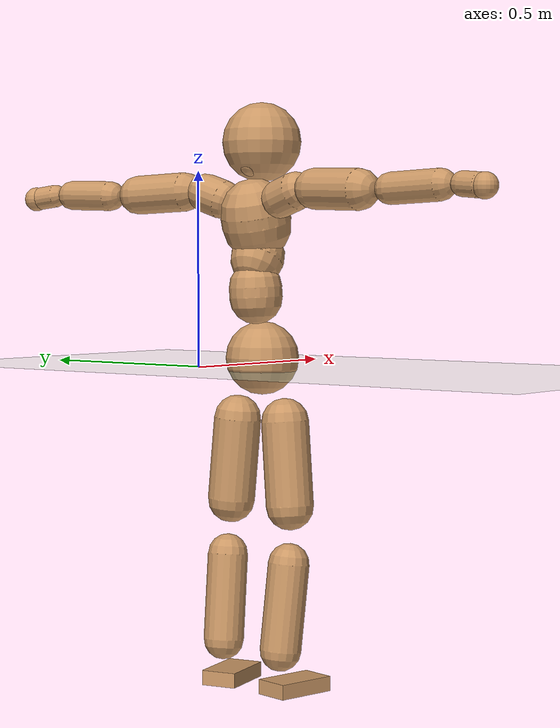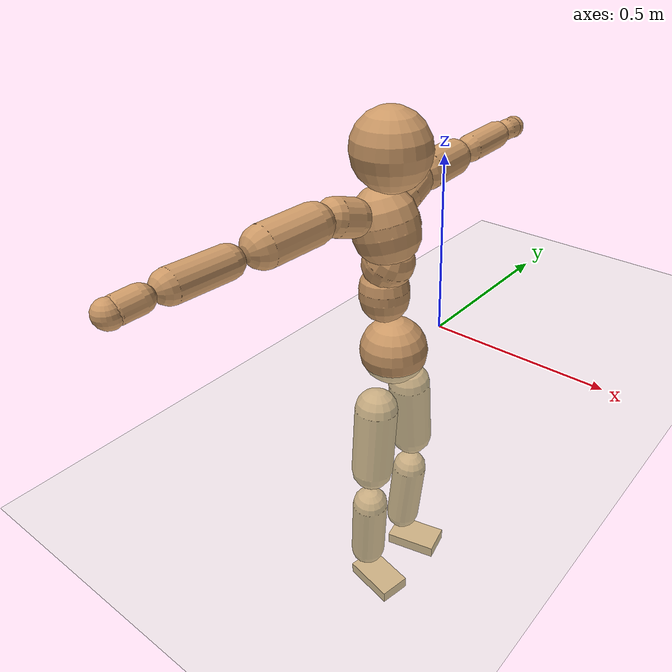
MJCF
<mujoco model="humanoid">
  <compiler coordinate="local"/>
  <default>
    <joint damping="0.0" armature="0.01" stiffness="0.0" limited="true"/>
    <geom conaffinity="1" condim="3" contype="7" margin="0.001" rgba="0.8 0.6 .4 1"/>
  </default>
  <asset>
    <texture type="skybox" builtin="gradient" rgb1=".4 .5 .6" rgb2="0 0 0" width="100" height="100"/>
    <texture builtin="flat" height="1278" mark="cross" markrgb="1 1 1" name="texgeom" random="0.01" rgb1="0.8 0.6 0.4" rgb2="0.8 0.6 0.4" type="cube" width="127"/>
    <texture builtin="checker" height="100" name="texplane" rgb1="0 0 0" rgb2="0.8 0.8 0.8" type="2d" width="100"/>
    <material name="MatPlane" reflectance="0.5" shininess="1" specular="1" texrepeat="60 60" texture="texplane"/>
    <material name="geom" texture="texgeom" texuniform="true"/>
  </asset>
  <worldbody>
    <light cutoff="100" diffuse="1 1 1" dir="-0 0 -1.3" directional="true" exponent="1" pos="0 0 1.3" specular=".1 .1 .1"/>
    <geom conaffinity="1" condim="3" name="floor" pos="0 0 0" rgba="0.8 0.9 0.8 1" size="100 100 .2" type="plane" material="MatPlane"/>
    <body name="Pelvis" pos="-0.0024 -0.2099 0.0306">
      <freejoint name="Pelvis"/>
      <geom type="sphere" contype="1" conaffinity="1" density="500" size="0.0915" pos="0.0000 0.0000 0.0000" name="Pelvis"/>
      <body name="L_Hip" pos="-0.0038 0.0696 -0.0867">
        <joint name="L_Hip_x" type="hinge" pos="0 0 0" axis="1 0 0" stiffness="800" damping="80" armature="0.02" range="-180.0000 180.0000"/>
        <joint name="L_Hip_y" type="hinge" pos="0 0 0" axis="0 1 0" stiffness="800" damping="80" armature="0.02" range="-180.0000 180.0000"/>
        <joint name="L_Hip_z" type="hinge" pos="0 0 0" axis="0 0 1" stiffness="800" damping="80" armature="0.02" range="-180.0000 180.0000"/>
        <geom type="capsule" contype="1" conaffinity="1" density="500" fromto="-0.0015 0.0056 -0.0684 -0.0058 0.0225 -0.2736" size="0.0597" name="L_Hip"/>
        <body name="L_Knee" pos="-0.0073 0.0282 -0.342">
          <joint name="L_Knee_x" type="hinge" pos="0 0 0" axis="1 0 0" stiffness="800" damping="80" armature="0.02" range="-180.0000 180.0000"/>
          <joint name="L_Knee_y" type="hinge" pos="0 0 0" axis="0 1 0" stiffness="800" damping="80" armature="0.02" range="-180.0000 180.0000"/>
          <joint name="L_Knee_z" type="hinge" pos="0 0 0" axis="0 0 1" stiffness="800" damping="80" armature="0.02" range="-180.0000 180.0000"/>
          <geom type="capsule" contype="1" conaffinity="1" density="500" fromto="-0.0081 -0.0020 -0.0717 -0.0325 -0.0082 -0.2869" size="0.051" name="L_Knee"/>
          <body name="L_Ankle" pos="-0.0407 -0.0102 -0.3586">
            <joint name="L_Ankle_x" type="hinge" pos="0 0 0" axis="1 0 0" stiffness="800" damping="80" armature="0.02" range="-180.0000 180.0000"/>
            <joint name="L_Ankle_y" type="hinge" pos="0 0 0" axis="0 1 0" stiffness="800" damping="80" armature="0.02" range="-180.0000 180.0000"/>
            <joint name="L_Ankle_z" type="hinge" pos="0 0 0" axis="0 0 1" stiffness="800" damping="80" armature="0.02" range="-180.0000 180.0000"/>
            <geom type="box" contype="1" conaffinity="1" density="500" pos="0.0544 0.0126 -0.0261" size="0.0785 0.0456 0.0187" quat="0.9936 0.0000 0.0000 0.1133" name="L_Ankle"/>
            <body name="L_Toe" pos="0.1089 0.0252 -0.0521">
              <joint name="L_Toe_x" type="hinge" pos="0 0 0" axis="1 0 0" stiffness="500" damping="50" armature="0.02" range="-180.0000 180.0000"/>
              <joint name="L_Toe_y" type="hinge" pos="0 0 0" axis="0 1 0" stiffness="500" damping="50" armature="0.02" range="-180.0000 180.0000"/>
              <joint name="L_Toe_z" type="hinge" pos="0 0 0" axis="0 0 1" stiffness="500" damping="50" armature="0.02" range="-180.0000 180.0000"/>
              <geom type="box" contype="1" conaffinity="1" density="500" pos="0.0000 0.0000 0.0263" size="0.0009 0.0023 0.0009" quat="0.9928 0.0000 0.0000 0.1198" name="L_Toe"/>
            </body>
          </body>
        </body>
      </body>
      <body name="R_Hip" pos="-0.0013 -0.0678 -0.0865">
        <joint name="R_Hip_x" type="hinge" pos="0 0 0" axis="1 0 0" stiffness="800" damping="80" armature="0.02" range="-180.0000 180.0000"/>
        <joint name="R_Hip_y" type="hinge" pos="0 0 0" axis="0 1 0" stiffness="800" damping="80" armature="0.02" range="-180.0000 180.0000"/>
        <joint name="R_Hip_z" type="hinge" pos="0 0 0" axis="0 0 1" stiffness="800" damping="80" armature="0.02" range="-180.0000 180.0000"/>
        <geom type="capsule" contype="1" conaffinity="1" density="500" fromto="-0.0019 -0.0066 -0.0697 -0.0075 -0.0265 -0.2786" size="0.0591" name="R_Hip"/>
        <body name="R_Knee" pos="-0.0094 -0.0332 -0.3483">
          <joint name="R_Knee_x" type="hinge" pos="0 0 0" axis="1 0 0" stiffness="800" damping="80" armature="0.02" range="-180.0000 180.0000"/>
          <joint name="R_Knee_y" type="hinge" pos="0 0 0" axis="0 1 0" stiffness="800" damping="80" armature="0.02" range="-180.0000 180.0000"/>
          <joint name="R_Knee_z" type="hinge" pos="0 0 0" axis="0 0 1" stiffness="800" damping="80" armature="0.02" range="-180.0000 180.0000"/>
          <geom type="capsule" contype="1" conaffinity="1" density="500" fromto="-0.0079 0.0024 -0.0718 -0.0315 0.0097 -0.2871" size="0.0512" name="R_Knee"/>
          <body name="R_Ankle" pos="-0.0394 0.0121 -0.3589">
            <joint name="R_Ankle_x" type="hinge" pos="0 0 0" axis="1 0 0" stiffness="800" damping="80" armature="0.02" range="-180.0000 180.0000"/>
            <joint name="R_Ankle_y" type="hinge" pos="0 0 0" axis="0 1 0" stiffness="800" damping="80" armature="0.02" range="-180.0000 180.0000"/>
            <joint name="R_Ankle_z" type="hinge" pos="0 0 0" axis="0 0 1" stiffness="800" damping="80" armature="0.02" range="-180.0000 180.0000"/>
            <geom type="box" contype="1" conaffinity="1" density="500" pos="0.0560 -0.0106 -0.0219" size="0.0792 0.0446 0.0187" quat="0.9956 0.0000 0.0000 -0.0932" name="R_Ankle"/>
            <body name="R_Toe" pos="0.1121 -0.0212 -0.0437">
              <joint name="R_Toe_x" type="hinge" pos="0 0 0" axis="1 0 0" stiffness="500" damping="50" armature="0.02" range="-180.0000 180.0000"/>
              <joint name="R_Toe_y" type="hinge" pos="0 0 0" axis="0 1 0" stiffness="500" damping="50" armature="0.02" range="-180.0000 180.0000"/>
              <joint name="R_Toe_z" type="hinge" pos="0 0 0" axis="0 0 1" stiffness="500" damping="50" armature="0.02" range="-180.0000 180.0000"/>
              <geom type="box" contype="1" conaffinity="1" density="500" pos="0.0000 0.0000 0.0239" size="0.0009 0.0022 0.001" quat="0.9965 0.0000 0.0000 -0.0831" name="R_Toe"/>
            </body>
          </body>
        </body>
      </body>
      <body name="Torso" pos="-0.0254 -0.0027 0.1008">
        <joint name="Torso_x" type="hinge" pos="0 0 0" axis="1 0 0" stiffness="1000" damping="100" armature="0.02" range="-180.0000 180.0000"/>
        <joint name="Torso_y" type="hinge" pos="0 0 0" axis="0 1 0" stiffness="1000" damping="100" armature="0.02" range="-180.0000 180.0000"/>
        <joint name="Torso_z" type="hinge" pos="0 0 0" axis="0 0 1" stiffness="1000" damping="100" armature="0.02" range="-180.0000 180.0000"/>
        <geom type="capsule" contype="1" conaffinity="1" density="500" fromto="-0.0023 0.0026 0.0751 -0.0015 0.0017 0.0501" size="0.066123" name="Torso"/>
        <body name="Spine" pos="-0.0038 0.0043 0.1252">
          <joint name="Spine_x" type="hinge" pos="0 0 0" axis="1 0 0" stiffness="1000" damping="100" armature="0.02" range="-180.0000 180.0000"/>
          <joint name="Spine_y" type="hinge" pos="0 0 0" axis="0 1 0" stiffness="1000" damping="100" armature="0.02" range="-180.0000 180.0000"/>
          <joint name="Spine_z" type="hinge" pos="0 0 0" axis="0 0 1" stiffness="1000" damping="100" armature="0.02" range="-180.0000 180.0000"/>
          <geom type="capsule" contype="1" conaffinity="1" density="500" fromto="0.0165 0.0013 0.0289 0.0110 0.0009 0.0193" size="0.066309" name="Spine"/>
          <body name="Chest" pos="0.0275 0.0022 0.0482">
            <joint name="Chest_x" type="hinge" pos="0 0 0" axis="1 0 0" stiffness="1000" damping="100" armature="0.02" range="-180.0000 180.0000"/>
            <joint name="Chest_y" type="hinge" pos="0 0 0" axis="0 1 0" stiffness="1000" damping="100" armature="0.02" range="-180.0000 180.0000"/>
            <joint name="Chest_z" type="hinge" pos="0 0 0" axis="0 0 1" stiffness="1000" damping="100" armature="0.02" range="-180.0000 180.0000"/>
            <geom type="capsule" contype="1" conaffinity="1" density="500" fromto="-0.0244 -0.0010 0.0850 -0.0163 -0.0007 0.0566" size="0.08649" name="Chest"/>
            <body name="Neck" pos="-0.047 -0.0032 0.1993">
              <joint name="Neck_x" type="hinge" pos="0 0 0" axis="1 0 0" stiffness="500" damping="50" armature="0.02" range="-180.0000 180.0000"/>
              <joint name="Neck_y" type="hinge" pos="0 0 0" axis="0 1 0" stiffness="500" damping="50" armature="0.02" range="-180.0000 180.0000"/>
              <joint name="Neck_z" type="hinge" pos="0 0 0" axis="0 0 1" stiffness="500" damping="50" armature="0.02" range="-180.0000 180.0000"/>
              <geom type="capsule" contype="1" conaffinity="1" density="500" fromto="0.0096 0.0003 0.0122 0.0386 0.0012 0.0488" size="0.037758" name="Neck"/>
              <body name="Head" pos="0.0482 0.0015 0.0611">
                <joint name="Head_x" type="hinge" pos="0 0 0" axis="1 0 0" stiffness="500" damping="50" armature="0.02" range="-180.0000 180.0000"/>
                <joint name="Head_y" type="hinge" pos="0 0 0" axis="0 1 0" stiffness="500" damping="50" armature="0.02" range="-180.0000 180.0000"/>
                <joint name="Head_z" type="hinge" pos="0 0 0" axis="0 0 1" stiffness="500" damping="50" armature="0.02" range="-180.0000 180.0000"/>
                <geom type="sphere" contype="1" conaffinity="1" density="500" size="0.0978" pos="0.0000 0.0000 0.0000" name="Head"/>
              </body>
            </body>
            <body name="L_Thorax" pos="-0.0354 0.0738 0.1137">
              <joint name="L_Thorax_x" type="hinge" pos="0 0 0" axis="1 0 0" stiffness="500" damping="50" armature="0.02" range="-180.0000 180.0000"/>
              <joint name="L_Thorax_y" type="hinge" pos="0 0 0" axis="0 1 0" stiffness="500" damping="50" armature="0.02" range="-180.0000 180.0000"/>
              <joint name="L_Thorax_z" type="hinge" pos="0 0 0" axis="0 0 1" stiffness="500" damping="50" armature="0.02" range="-180.0000 180.0000"/>
              <geom type="capsule" contype="1" conaffinity="1" density="500" fromto="-0.0017 0.0168 0.0059 -0.0069 0.0672 0.0236" size="0.0485" name="L_Thorax"/>
              <body name="L_Shoulder" pos="-0.0087 0.084 0.0296">
                <joint name="L_Shoulder_x" type="hinge" pos="0 0 0" axis="1 0 0" stiffness="500" damping="50" armature="0.02" range="-720.0000 720.0000"/>
                <joint name="L_Shoulder_y" type="hinge" pos="0 0 0" axis="0 1 0" stiffness="500" damping="50" armature="0.02" range="-720.0000 720.0000"/>
                <joint name="L_Shoulder_z" type="hinge" pos="0 0 0" axis="0 0 1" stiffness="500" damping="50" armature="0.02" range="-720.0000 720.0000"/>
                <geom type="capsule" contype="1" conaffinity="1" density="500" fromto="-0.0056 0.0475 -0.0019 -0.0225 0.1901 -0.0076" size="0.0491" name="L_Shoulder"/>
                <body name="L_Elbow" pos="-0.0281 0.2377 -0.0095">
                  <joint name="L_Elbow_x" type="hinge" pos="0 0 0" axis="1 0 0" stiffness="500" damping="50" armature="0.02" range="-720.0000 720.0000"/>
                  <joint name="L_Elbow_y" type="hinge" pos="0 0 0" axis="0 1 0" stiffness="500" damping="50" armature="0.02" range="-720.0000 720.0000"/>
                  <joint name="L_Elbow_z" type="hinge" pos="0 0 0" axis="0 0 1" stiffness="500" damping="50" armature="0.02" range="-720.0000 720.0000"/>
                  <geom type="capsule" contype="1" conaffinity="1" density="500" fromto="0.0000 0.0454 0.0016 0.0001 0.1815 0.0063" size="0.038" name="L_Elbow"/>
                  <body name="L_Wrist" pos="0.0001 0.2269 0.0078">
                    <joint name="L_Wrist_x" type="hinge" pos="0 0 0" axis="1 0 0" stiffness="300" damping="30" armature="0.02" range="-180.0000 180.0000"/>
                    <joint name="L_Wrist_y" type="hinge" pos="0 0 0" axis="0 1 0" stiffness="300" damping="30" armature="0.02" range="-180.0000 180.0000"/>
                    <joint name="L_Wrist_z" type="hinge" pos="0 0 0" axis="0 0 1" stiffness="300" damping="30" armature="0.02" range="-180.0000 180.0000"/>
                    <geom type="capsule" contype="1" conaffinity="1" density="500" fromto="-0.0026 0.0156 -0.0019 -0.0103 0.0622 -0.0076" size="0.0295" name="L_Wrist"/>
                    <body name="L_Hand" pos="-0.0128 0.0778 -0.0094">
                      <joint name="L_Hand_x" type="hinge" pos="0 0 0" axis="1 0 0" stiffness="300" damping="30" armature="0.02" range="-180.0000 180.0000"/>
                      <joint name="L_Hand_y" type="hinge" pos="0 0 0" axis="0 1 0" stiffness="300" damping="30" armature="0.02" range="-180.0000 180.0000"/>
                      <joint name="L_Hand_z" type="hinge" pos="0 0 0" axis="0 0 1" stiffness="300" damping="30" armature="0.02" range="-180.0000 180.0000"/>
                      <geom type="sphere" contype="1" conaffinity="1" density="500" size="0.0315" pos="0.0000 0.0000 0.0000" name="L_Hand"/>
                    </body>
                  </body>
                </body>
              </body>
            </body>
            <body name="R_Thorax" pos="-0.0396 -0.0756 0.1119">
              <joint name="R_Thorax_x" type="hinge" pos="0 0 0" axis="1 0 0" stiffness="500" damping="50" armature="0.02" range="-180.0000 180.0000"/>
              <joint name="R_Thorax_y" type="hinge" pos="0 0 0" axis="0 1 0" stiffness="500" damping="50" armature="0.02" range="-180.0000 180.0000"/>
              <joint name="R_Thorax_z" type="hinge" pos="0 0 0" axis="0 0 1" stiffness="500" damping="50" armature="0.02" range="-180.0000 180.0000"/>
              <geom type="capsule" contype="1" conaffinity="1" density="500" fromto="-0.0021 -0.0173 0.0058 -0.0085 -0.0693 0.0232" size="0.0472" name="R_Thorax"/>
              <body name="R_Shoulder" pos="-0.0106 -0.0866 0.029">
                <joint name="R_Shoulder_x" type="hinge" pos="0 0 0" axis="1 0 0" stiffness="500" damping="50" armature="0.02" range="-720.0000 720.0000"/>
                <joint name="R_Shoulder_y" type="hinge" pos="0 0 0" axis="0 1 0" stiffness="500" damping="50" armature="0.02" range="-720.0000 720.0000"/>
                <joint name="R_Shoulder_z" type="hinge" pos="0 0 0" axis="0 0 1" stiffness="500" damping="50" armature="0.02" range="-720.0000 720.0000"/>
                <geom type="capsule" contype="1" conaffinity="1" density="500" fromto="-0.0041 -0.0458 -0.0017 -0.0163 -0.1832 -0.0070" size="0.0498" name="R_Shoulder"/>
                <body name="R_Elbow" pos="-0.0203 -0.229 -0.0087">
                  <joint name="R_Elbow_x" type="hinge" pos="0 0 0" axis="1 0 0" stiffness="500" damping="50" armature="0.02" range="-720.0000 720.0000"/>
                  <joint name="R_Elbow_y" type="hinge" pos="0 0 0" axis="0 1 0" stiffness="500" damping="50" armature="0.02" range="-720.0000 720.0000"/>
                  <joint name="R_Elbow_z" type="hinge" pos="0 0 0" axis="0 0 1" stiffness="500" damping="50" armature="0.02" range="-720.0000 720.0000"/>
                  <geom type="capsule" contype="1" conaffinity="1" density="500" fromto="-0.0005 -0.0460 0.0017 -0.0019 -0.1839 0.0067" size="0.0378" name="R_Elbow"/>
                  <body name="R_Wrist" pos="-0.0024 -0.2298 0.0084">
                    <joint name="R_Wrist_x" type="hinge" pos="0 0 0" axis="1 0 0" stiffness="300" damping="30" armature="0.02" range="-180.0000 180.0000"/>
                    <joint name="R_Wrist_y" type="hinge" pos="0 0 0" axis="0 1 0" stiffness="300" damping="30" armature="0.02" range="-180.0000 180.0000"/>
                    <joint name="R_Wrist_z" type="hinge" pos="0 0 0" axis="0 0 1" stiffness="300" damping="30" armature="0.02" range="-180.0000 180.0000"/>
                    <geom type="capsule" contype="1" conaffinity="1" density="500" fromto="-0.0020 -0.0153 -0.0014 -0.0079 -0.0612 -0.0055" size="0.0297" name="R_Wrist"/>
                    <body name="R_Hand" pos="-0.0098 -0.0765 -0.0069">
                      <joint name="R_Hand_x" type="hinge" pos="0 0 0" axis="1 0 0" stiffness="300" damping="30" armature="0.02" range="-180.0000 180.0000"/>
                      <joint name="R_Hand_y" type="hinge" pos="0 0 0" axis="0 1 0" stiffness="300" damping="30" armature="0.02" range="-180.0000 180.0000"/>
                      <joint name="R_Hand_z" type="hinge" pos="0 0 0" axis="0 0 1" stiffness="300" damping="30" armature="0.02" range="-180.0000 180.0000"/>
                      <geom type="sphere" contype="1" conaffinity="1" density="500" size="0.0309" pos="0.0000 0.0000 0.0000" name="R_Hand"/>
                    </body>
                  </body>
                </body>
              </body>
            </body>
          </body>
        </body>
      </body>
    </body>
  </worldbody>
  <actuator>
    <motor name="L_Hip_x" joint="L_Hip_x" gear="500"/>
    <motor name="L_Hip_y" joint="L_Hip_y" gear="500"/>
    <motor name="L_Hip_z" joint="L_Hip_z" gear="500"/>
    <motor name="L_Knee_x" joint="L_Knee_x" gear="500"/>
    <motor name="L_Knee_y" joint="L_Knee_y" gear="500"/>
    <motor name="L_Knee_z" joint="L_Knee_z" gear="500"/>
    <motor name="L_Ankle_x" joint="L_Ankle_x" gear="500"/>
    <motor name="L_Ankle_y" joint="L_Ankle_y" gear="500"/>
    <motor name="L_Ankle_z" joint="L_Ankle_z" gear="500"/>
    <motor name="L_Toe_x" joint="L_Toe_x" gear="500"/>
    <motor name="L_Toe_y" joint="L_Toe_y" gear="500"/>
    <motor name="L_Toe_z" joint="L_Toe_z" gear="500"/>
    <motor name="R_Hip_x" joint="R_Hip_x" gear="500"/>
    <motor name="R_Hip_y" joint="R_Hip_y" gear="500"/>
    <motor name="R_Hip_z" joint="R_Hip_z" gear="500"/>
    <motor name="R_Knee_x" joint="R_Knee_x" gear="500"/>
    <motor name="R_Knee_y" joint="R_Knee_y" gear="500"/>
    <motor name="R_Knee_z" joint="R_Knee_z" gear="500"/>
    <motor name="R_Ankle_x" joint="R_Ankle_x" gear="500"/>
    <motor name="R_Ankle_y" joint="R_Ankle_y" gear="500"/>
    <motor name="R_Ankle_z" joint="R_Ankle_z" gear="500"/>
    <motor name="R_Toe_x" joint="R_Toe_x" gear="500"/>
    <motor name="R_Toe_y" joint="R_Toe_y" gear="500"/>
    <motor name="R_Toe_z" joint="R_Toe_z" gear="500"/>
    <motor name="Torso_x" joint="Torso_x" gear="500"/>
    <motor name="Torso_y" joint="Torso_y" gear="500"/>
    <motor name="Torso_z" joint="Torso_z" gear="500"/>
    <motor name="Spine_x" joint="Spine_x" gear="500"/>
    <motor name="Spine_y" joint="Spine_y" gear="500"/>
    <motor name="Spine_z" joint="Spine_z" gear="500"/>
    <motor name="Chest_x" joint="Chest_x" gear="500"/>
    <motor name="Chest_y" joint="Chest_y" gear="500"/>
    <motor name="Chest_z" joint="Chest_z" gear="500"/>
    <motor name="Neck_x" joint="Neck_x" gear="500"/>
    <motor name="Neck_y" joint="Neck_y" gear="500"/>
    <motor name="Neck_z" joint="Neck_z" gear="500"/>
    <motor name="Head_x" joint="Head_x" gear="500"/>
    <motor name="Head_y" joint="Head_y" gear="500"/>
    <motor name="Head_z" joint="Head_z" gear="500"/>
    <motor name="L_Thorax_x" joint="L_Thorax_x" gear="500"/>
    <motor name="L_Thorax_y" joint="L_Thorax_y" gear="500"/>
    <motor name="L_Thorax_z" joint="L_Thorax_z" gear="500"/>
    <motor name="L_Shoulder_x" joint="L_Shoulder_x" gear="500"/>
    <motor name="L_Shoulder_y" joint="L_Shoulder_y" gear="500"/>
    <motor name="L_Shoulder_z" joint="L_Shoulder_z" gear="500"/>
    <motor name="L_Elbow_x" joint="L_Elbow_x" gear="500"/>
    <motor name="L_Elbow_y" joint="L_Elbow_y" gear="500"/>
    <motor name="L_Elbow_z" joint="L_Elbow_z" gear="500"/>
    <motor name="L_Wrist_x" joint="L_Wrist_x" gear="500"/>
    <motor name="L_Wrist_y" joint="L_Wrist_y" gear="500"/>
    <motor name="L_Wrist_z" joint="L_Wrist_z" gear="500"/>
    <motor name="L_Hand_x" joint="L_Hand_x" gear="500"/>
    <motor name="L_Hand_y" joint="L_Hand_y" gear="500"/>
    <motor name="L_Hand_z" joint="L_Hand_z" gear="500"/>
    <motor name="R_Thorax_x" joint="R_Thorax_x" gear="500"/>
    <motor name="R_Thorax_y" joint="R_Thorax_y" gear="500"/>
    <motor name="R_Thorax_z" joint="R_Thorax_z" gear="500"/>
    <motor name="R_Shoulder_x" joint="R_Shoulder_x" gear="500"/>
    <motor name="R_Shoulder_y" joint="R_Shoulder_y" gear="500"/>
    <motor name="R_Shoulder_z" joint="R_Shoulder_z" gear="500"/>
    <motor name="R_Elbow_x" joint="R_Elbow_x" gear="500"/>
    <motor name="R_Elbow_y" joint="R_Elbow_y" gear="500"/>
    <motor name="R_Elbow_z" joint="R_Elbow_z" gear="500"/>
    <motor name="R_Wrist_x" joint="R_Wrist_x" gear="500"/>
    <motor name="R_Wrist_y" joint="R_Wrist_y" gear="500"/>
    <motor name="R_Wrist_z" joint="R_Wrist_z" gear="500"/>
    <motor name="R_Hand_x" joint="R_Hand_x" gear="500"/>
    <motor name="R_Hand_y" joint="R_Hand_y" gear="500"/>
    <motor name="R_Hand_z" joint="R_Hand_z" gear="500"/>
  </actuator>
  <contact>
    <exclude body1="Torso" body2="Chest"/>
    <exclude body1="Head" body2="Chest"/>
    <exclude body1="R_Knee" body2="R_Toe"/>
    <exclude body1="R_Knee" body2="L_Ankle"/>
    <exclude body1="R_Knee" body2="L_Toe"/>
    <exclude body1="L_Knee" body2="L_Toe"/>
    <exclude body1="L_Knee" body2="R_Ankle"/>
    <exclude body1="L_Knee" body2="R_Toe"/>
    <exclude body1="L_Shoulder" body2="Chest"/>
    <exclude body1="R_Shoulder" body2="Chest"/>
  </contact>
  <sensor/>
  <size njmax="700" nconmax="700"/>
</mujoco>
